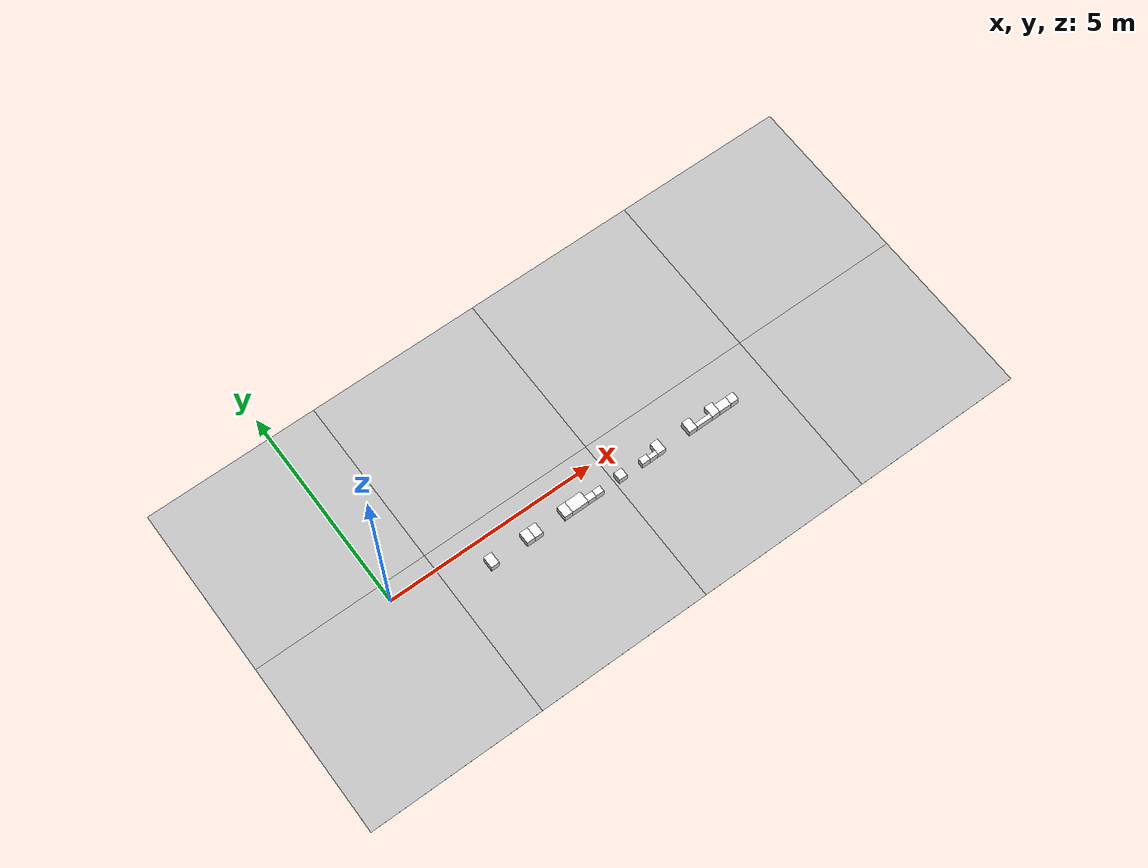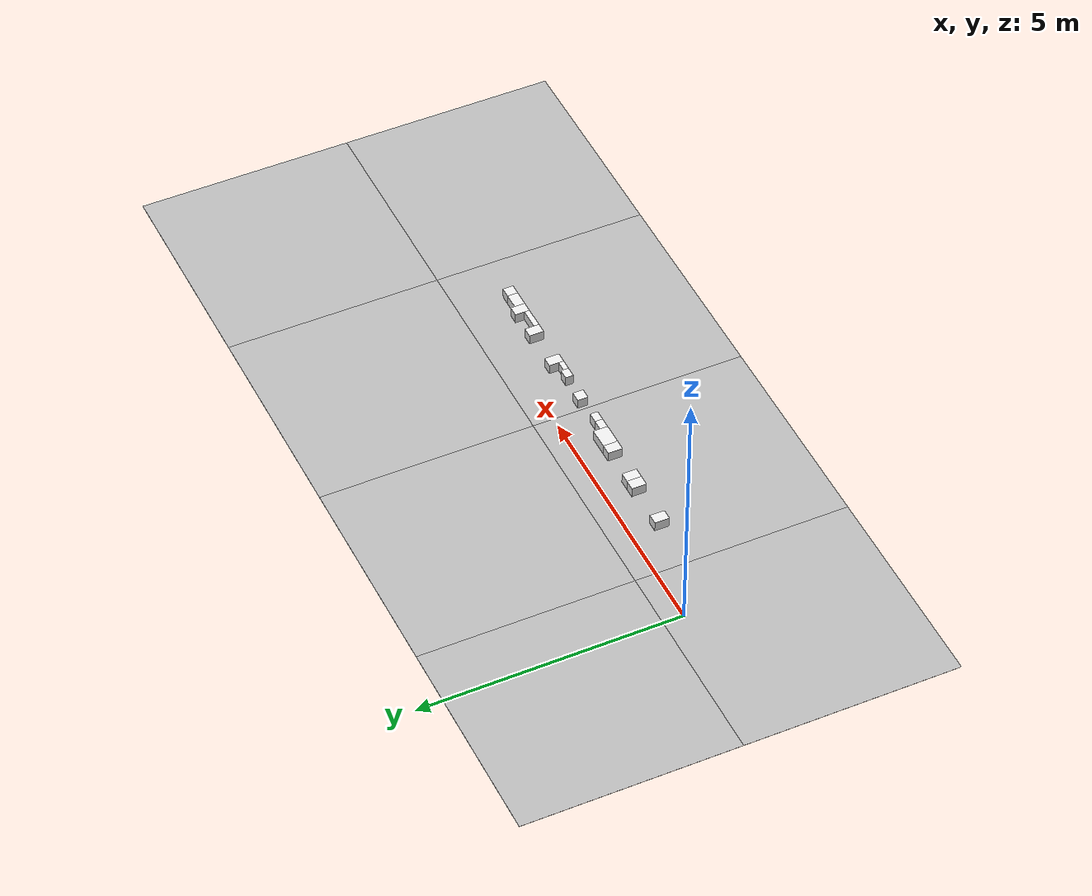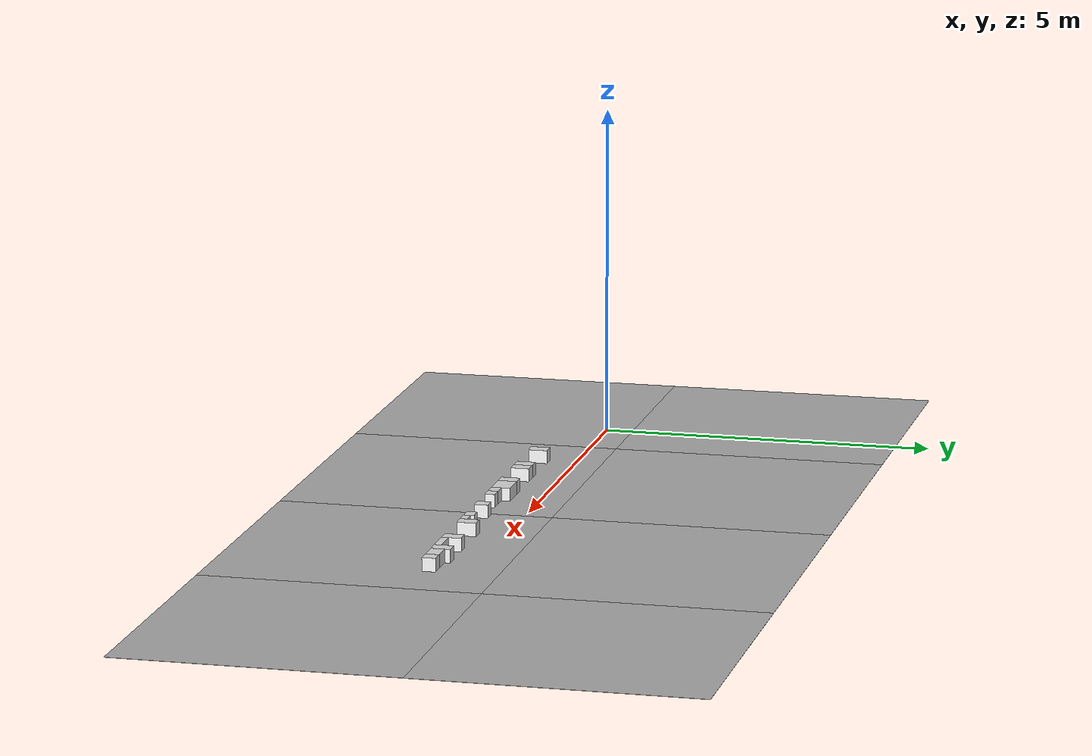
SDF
<sdf version='1.6'><world name='default'>
    <light name='sun_light' type='directional'>
      <pose frame=''>0 0 10 0 -0 0</pose>
      <diffuse>0.5 0.5 0.5 1</diffuse>
      <specular>0.1 0.1 0.1 1</specular>
      <direction>0.1 0.1 -0.9</direction>
      <attenuation>
        <range>20</range>
        <constant>0.5</constant>
        <linear>0.01</linear>
        <quadratic>0.001</quadratic>
      </attenuation>
      <cast_shadows>1</cast_shadows>
    </light>

    <model name='Tile/0-0'>
      <static>1</static>
      <link name='link'>
        <collision name='collision'>
          <geometry>
            <plane>
              <normal>0 0 1</normal>
              <size>4.096 4.096</size>
            </plane>
          </geometry>
          <surface>
            <friction>
              <ode>
                <mu>100</mu>
                <mu2>50</mu2>
              </ode>
              <torsional>
                <ode/>
              </torsional>
            </friction>
            <contact>
              <ode/>
            </contact>
            <bounce/>
          </surface>
          <max_contacts>10</max_contacts>
        </collision>
        <visual name='visual'>
          <cast_shadows>0</cast_shadows>
          <geometry>
            <plane>
              <normal>0 0 1</normal>
              <size>4.096 4.096</size>
            </plane>
          </geometry>
          <material>
            <script>
              <uri>file://materials/scripts</uri>
              <uri>file://materials/textures</uri>
              <name>Tile/aa44efc093d15b0d016b671cb8dad8b9b5925cd42bc6b331ef31decf4ba6863e</name>
            </script>
          </material>
        </visual>
        <self_collide>0</self_collide>
        <enable_wind>0</enable_wind>
        <kinematic>0</kinematic>
      </link>
      <pose frame=''>-0.952 -1.6520000000000001 0 0 -0 0</pose>
    </model>

    <model name='Tile/0-1'>
      <static>1</static>
      <link name='link'>
        <collision name='collision'>
          <geometry>
            <plane>
              <normal>0 0 1</normal>
              <size>4.096 4.096</size>
            </plane>
          </geometry>
          <surface>
            <friction>
              <ode>
                <mu>100</mu>
                <mu2>50</mu2>
              </ode>
              <torsional>
                <ode/>
              </torsional>
            </friction>
            <contact>
              <ode/>
            </contact>
            <bounce/>
          </surface>
          <max_contacts>10</max_contacts>
        </collision>
        <visual name='visual'>
          <cast_shadows>0</cast_shadows>
          <geometry>
            <plane>
              <normal>0 0 1</normal>
              <size>4.096 4.096</size>
            </plane>
          </geometry>
          <material>
            <script>
              <uri>file://materials/scripts</uri>
              <uri>file://materials/textures</uri>
              <name>Tile/6681b896b1587d54cb69aadeb5fb7247b4d6d500490292053e67105ac88ca889</name>
            </script>
          </material>
        </visual>
        <self_collide>0</self_collide>
        <enable_wind>0</enable_wind>
        <kinematic>0</kinematic>
      </link>
      <pose frame=''>-0.952 2.444 0 0 -0 0</pose>
    </model>

    <model name='Tile/1-0'>
      <static>1</static>
      <link name='link'>
        <collision name='collision'>
          <geometry>
            <plane>
              <normal>0 0 1</normal>
              <size>4.096 4.096</size>
            </plane>
          </geometry>
          <surface>
            <friction>
              <ode>
                <mu>100</mu>
                <mu2>50</mu2>
              </ode>
              <torsional>
                <ode/>
              </torsional>
            </friction>
            <contact>
              <ode/>
            </contact>
            <bounce/>
          </surface>
          <max_contacts>10</max_contacts>
        </collision>
        <visual name='visual'>
          <cast_shadows>0</cast_shadows>
          <geometry>
            <plane>
              <normal>0 0 1</normal>
              <size>4.096 4.096</size>
            </plane>
          </geometry>
          <material>
            <script>
              <uri>file://materials/scripts</uri>
              <uri>file://materials/textures</uri>
              <name>Tile/7dc8ce11ba64be4533bd38afba15d7a45492441a6a299d20d6da9020bf327f9a</name>
            </script>
          </material>
        </visual>
        <self_collide>0</self_collide>
        <enable_wind>0</enable_wind>
        <kinematic>0</kinematic>
      </link>
      <pose frame=''>3.144 -1.6520000000000001 0 0 -0 0</pose>
    </model>

    <model name='Tile/1-1'>
      <static>1</static>
      <link name='link'>
        <collision name='collision'>
          <geometry>
            <plane>
              <normal>0 0 1</normal>
              <size>4.096 4.096</size>
            </plane>
          </geometry>
          <surface>
            <friction>
              <ode>
                <mu>100</mu>
                <mu2>50</mu2>
              </ode>
              <torsional>
                <ode/>
              </torsional>
            </friction>
            <contact>
              <ode/>
            </contact>
            <bounce/>
          </surface>
          <max_contacts>10</max_contacts>
        </collision>
        <visual name='visual'>
          <cast_shadows>0</cast_shadows>
          <geometry>
            <plane>
              <normal>0 0 1</normal>
              <size>4.096 4.096</size>
            </plane>
          </geometry>
          <material>
            <script>
              <uri>file://materials/scripts</uri>
              <uri>file://materials/textures</uri>
              <name>Tile/13957a6de1f2afce18d7f1f64dacc2f21295e26ccf498256b0e1a51002cd5706</name>
            </script>
          </material>
        </visual>
        <self_collide>0</self_collide>
        <enable_wind>0</enable_wind>
        <kinematic>0</kinematic>
      </link>
      <pose frame=''>3.144 2.444 0 0 -0 0</pose>
    </model>

    <model name='Tile/2-0'>
      <static>1</static>
      <link name='link'>
        <collision name='collision'>
          <geometry>
            <plane>
              <normal>0 0 1</normal>
              <size>4.096 4.096</size>
            </plane>
          </geometry>
          <surface>
            <friction>
              <ode>
                <mu>100</mu>
                <mu2>50</mu2>
              </ode>
              <torsional>
                <ode/>
              </torsional>
            </friction>
            <contact>
              <ode/>
            </contact>
            <bounce/>
          </surface>
          <max_contacts>10</max_contacts>
        </collision>
        <visual name='visual'>
          <cast_shadows>0</cast_shadows>
          <geometry>
            <plane>
              <normal>0 0 1</normal>
              <size>4.096 4.096</size>
            </plane>
          </geometry>
          <material>
            <script>
              <uri>file://materials/scripts</uri>
              <uri>file://materials/textures</uri>
              <name>Tile/e1e258e795c282876e6c88ad2bfdf38c4a17c8ecb43e058a6b7c4b864abee96e</name>
            </script>
          </material>
        </visual>
        <self_collide>0</self_collide>
        <enable_wind>0</enable_wind>
        <kinematic>0</kinematic>
      </link>
      <pose frame=''>7.24 -1.6520000000000001 0 0 -0 0</pose>
    </model>

    <model name='Tile/2-1'>
      <static>1</static>
      <link name='link'>
        <collision name='collision'>
          <geometry>
            <plane>
              <normal>0 0 1</normal>
              <size>4.096 4.096</size>
            </plane>
          </geometry>
          <surface>
            <friction>
              <ode>
                <mu>100</mu>
                <mu2>50</mu2>
              </ode>
              <torsional>
                <ode/>
              </torsional>
            </friction>
            <contact>
              <ode/>
            </contact>
            <bounce/>
          </surface>
          <max_contacts>10</max_contacts>
        </collision>
        <visual name='visual'>
          <cast_shadows>0</cast_shadows>
          <geometry>
            <plane>
              <normal>0 0 1</normal>
              <size>4.096 4.096</size>
            </plane>
          </geometry>
          <material>
            <script>
              <uri>file://materials/scripts</uri>
              <uri>file://materials/textures</uri>
              <name>Tile/13957a6de1f2afce18d7f1f64dacc2f21295e26ccf498256b0e1a51002cd5706</name>
            </script>
          </material>
        </visual>
        <self_collide>0</self_collide>
        <enable_wind>0</enable_wind>
        <kinematic>0</kinematic>
      </link>
      <pose frame=''>7.24 2.444 0 0 -0 0</pose>
    </model>

    <model name='Tile/3-0'>
      <static>1</static>
      <link name='link'>
        <collision name='collision'>
          <geometry>
            <plane>
              <normal>0 0 1</normal>
              <size>4.096 4.096</size>
            </plane>
          </geometry>
          <surface>
            <friction>
              <ode>
                <mu>100</mu>
                <mu2>50</mu2>
              </ode>
              <torsional>
                <ode/>
              </torsional>
            </friction>
            <contact>
              <ode/>
            </contact>
            <bounce/>
          </surface>
          <max_contacts>10</max_contacts>
        </collision>
        <visual name='visual'>
          <cast_shadows>0</cast_shadows>
          <geometry>
            <plane>
              <normal>0 0 1</normal>
              <size>4.096 4.096</size>
            </plane>
          </geometry>
          <material>
            <script>
              <uri>file://materials/scripts</uri>
              <uri>file://materials/textures</uri>
              <name>Tile/24cff4cfd29088829f06b91573f2d527903faa6ef89d07519b5e2219bf9e69df</name>
            </script>
          </material>
        </visual>
        <self_collide>0</self_collide>
        <enable_wind>0</enable_wind>
        <kinematic>0</kinematic>
      </link>
      <pose frame=''>11.336 -1.6520000000000001 0 0 -0 0</pose>
    </model>

    <model name='Tile/3-1'>
      <static>1</static>
      <link name='link'>
        <collision name='collision'>
          <geometry>
            <plane>
              <normal>0 0 1</normal>
              <size>4.096 4.096</size>
            </plane>
          </geometry>
          <surface>
            <friction>
              <ode>
                <mu>100</mu>
                <mu2>50</mu2>
              </ode>
              <torsional>
                <ode/>
              </torsional>
            </friction>
            <contact>
              <ode/>
            </contact>
            <bounce/>
          </surface>
          <max_contacts>10</max_contacts>
        </collision>
        <visual name='visual'>
          <cast_shadows>0</cast_shadows>
          <geometry>
            <plane>
              <normal>0 0 1</normal>
              <size>4.096 4.096</size>
            </plane>
          </geometry>
          <material>
            <script>
              <uri>file://materials/scripts</uri>
              <uri>file://materials/textures</uri>
              <name>Tile/f5a4d266d57c88a2e237d7d103c13ff89585a31ae4c0025a395214e999f068f7</name>
            </script>
          </material>
        </visual>
        <self_collide>0</self_collide>
        <enable_wind>0</enable_wind>
        <kinematic>0</kinematic>
      </link>
      <pose frame=''>11.336 2.444 0 0 -0 0</pose>
    </model>

    <model name='Obstacle/-5/0'>
      <pose frame=''>2.1 -0.5599999999999999 0.1 0 0 -0.0</pose>
      <link name='link'>
        <inertial>
          <mass>10</mass>
          <inertia>
            <ixx>0.166667</ixx>
            <ixy>0</ixy>
            <ixz>0</ixz>
            <iyy>0.166667</iyy>
            <iyz>0</iyz>
            <izz>0.166667</izz>
          </inertia>
        </inertial>
        <collision name='collision'>
          <geometry>
            <box>
              <size>0.2 0.28 0.2</size>
            </box>
          </geometry>
          <max_contacts>10</max_contacts>
          <surface>
            <contact>
              <ode/>
            </contact>
            <bounce/>
            <friction>
              <torsional>
                <ode/>
              </torsional>
              <ode/>
            </friction>
          </surface>
        </collision>
        <visual name='visual'>
          <geometry>
            <box>
              <size>0.2 0.28 0.2</size>
            </box>
          </geometry>
          <material>
            <script>
              <name>Gazebo/White</name>
              <uri>file://media/materials/scripts/gazebo.material</uri>
            </script>
          </material>
        </visual>
        <self_collide>0</self_collide>
        <enable_wind>0</enable_wind>
        <kinematic>0</kinematic>
      </link>
    </model>

    <model name='Obstacle/-12/0'>
      <pose frame=''>3.0000000000000004 -0.5599999999999999 0.1 0 0 -0.0</pose>
      <link name='link'>
        <inertial>
          <mass>10</mass>
          <inertia>
            <ixx>0.166667</ixx>
            <ixy>0</ixy>
            <ixz>0</ixz>
            <iyy>0.166667</iyy>
            <iyz>0</iyz>
            <izz>0.166667</izz>
          </inertia>
        </inertial>
        <collision name='collision'>
          <geometry>
            <box>
              <size>0.2 0.28 0.2</size>
            </box>
          </geometry>
          <max_contacts>10</max_contacts>
          <surface>
            <contact>
              <ode/>
            </contact>
            <bounce/>
            <friction>
              <torsional>
                <ode/>
              </torsional>
              <ode/>
            </friction>
          </surface>
        </collision>
        <visual name='visual'>
          <geometry>
            <box>
              <size>0.2 0.28 0.2</size>
            </box>
          </geometry>
          <material>
            <script>
              <name>Gazebo/White</name>
              <uri>file://media/materials/scripts/gazebo.material</uri>
            </script>
          </material>
        </visual>
        <self_collide>0</self_collide>
        <enable_wind>0</enable_wind>
        <kinematic>0</kinematic>
      </link>
    </model>

    <model name='Obstacle/-16/0'>
      <pose frame=''>3.2000000000000006 -0.5599999999999999 0.1 0 0 -0.0</pose>
      <link name='link'>
        <inertial>
          <mass>10</mass>
          <inertia>
            <ixx>0.166667</ixx>
            <ixy>0</ixy>
            <ixz>0</ixz>
            <iyy>0.166667</iyy>
            <iyz>0</iyz>
            <izz>0.166667</izz>
          </inertia>
        </inertial>
        <collision name='collision'>
          <geometry>
            <box>
              <size>0.2 0.28 0.2</size>
            </box>
          </geometry>
          <max_contacts>10</max_contacts>
          <surface>
            <contact>
              <ode/>
            </contact>
            <bounce/>
            <friction>
              <torsional>
                <ode/>
              </torsional>
              <ode/>
            </friction>
          </surface>
        </collision>
        <visual name='visual'>
          <geometry>
            <box>
              <size>0.2 0.28 0.2</size>
            </box>
          </geometry>
          <material>
            <script>
              <name>Gazebo/White</name>
              <uri>file://media/materials/scripts/gazebo.material</uri>
            </script>
          </material>
        </visual>
        <self_collide>0</self_collide>
        <enable_wind>0</enable_wind>
        <kinematic>0</kinematic>
      </link>
    </model>

    <model name='Obstacle/-23/0'>
      <pose frame=''>3.9500000000000006 -0.5599999999999999 0.1 0 0 -0.0</pose>
      <link name='link'>
        <inertial>
          <mass>10</mass>
          <inertia>
            <ixx>0.166667</ixx>
            <ixy>0</ixy>
            <ixz>0</ixz>
            <iyy>0.166667</iyy>
            <iyz>0</iyz>
            <izz>0.166667</izz>
          </inertia>
        </inertial>
        <collision name='collision'>
          <geometry>
            <box>
              <size>0.2 0.28 0.2</size>
            </box>
          </geometry>
          <max_contacts>10</max_contacts>
          <surface>
            <contact>
              <ode/>
            </contact>
            <bounce/>
            <friction>
              <torsional>
                <ode/>
              </torsional>
              <ode/>
            </friction>
          </surface>
        </collision>
        <visual name='visual'>
          <geometry>
            <box>
              <size>0.2 0.28 0.2</size>
            </box>
          </geometry>
          <material>
            <script>
              <name>Gazebo/White</name>
              <uri>file://media/materials/scripts/gazebo.material</uri>
            </script>
          </material>
        </visual>
        <self_collide>0</self_collide>
        <enable_wind>0</enable_wind>
        <kinematic>0</kinematic>
      </link>
    </model>

    <model name='Obstacle/-27/0'>
      <pose frame=''>4.250000000000001 -0.5599999999999999 0.1 0 0 -0.0</pose>
      <link name='link'>
        <inertial>
          <mass>10</mass>
          <inertia>
            <ixx>0.166667</ixx>
            <ixy>0</ixy>
            <ixz>0</ixz>
            <iyy>0.166667</iyy>
            <iyz>0</iyz>
            <izz>0.166667</izz>
          </inertia>
        </inertial>
        <collision name='collision'>
          <geometry>
            <box>
              <size>0.4 0.28 0.2</size>
            </box>
          </geometry>
          <max_contacts>10</max_contacts>
          <surface>
            <contact>
              <ode/>
            </contact>
            <bounce/>
            <friction>
              <torsional>
                <ode/>
              </torsional>
              <ode/>
            </friction>
          </surface>
        </collision>
        <visual name='visual'>
          <geometry>
            <box>
              <size>0.4 0.28 0.2</size>
            </box>
          </geometry>
          <material>
            <script>
              <name>Gazebo/White</name>
              <uri>file://media/materials/scripts/gazebo.material</uri>
            </script>
          </material>
        </visual>
        <self_collide>0</self_collide>
        <enable_wind>0</enable_wind>
        <kinematic>0</kinematic>
      </link>
    </model>

    <model name='Obstacle/-31/0'>
      <pose frame=''>4.550000000000001 -0.625 0.1 0 0 -0.0</pose>
      <link name='link'>
        <inertial>
          <mass>10</mass>
          <inertia>
            <ixx>0.166667</ixx>
            <ixy>0</ixy>
            <ixz>0</ixz>
            <iyy>0.166667</iyy>
            <iyz>0</iyz>
            <izz>0.166667</izz>
          </inertia>
        </inertial>
        <collision name='collision'>
          <geometry>
            <box>
              <size>0.2 0.15 0.2</size>
            </box>
          </geometry>
          <max_contacts>10</max_contacts>
          <surface>
            <contact>
              <ode/>
            </contact>
            <bounce/>
            <friction>
              <torsional>
                <ode/>
              </torsional>
              <ode/>
            </friction>
          </surface>
        </collision>
        <visual name='visual'>
          <geometry>
            <box>
              <size>0.2 0.15 0.2</size>
            </box>
          </geometry>
          <material>
            <script>
              <name>Gazebo/White</name>
              <uri>file://media/materials/scripts/gazebo.material</uri>
            </script>
          </material>
        </visual>
        <self_collide>0</self_collide>
        <enable_wind>0</enable_wind>
        <kinematic>0</kinematic>
      </link>
    </model>

    <model name='Obstacle/-35/0'>
      <pose frame=''>4.750000000000001 -0.625 0.1 0 0 -0.0</pose>
      <link name='link'>
        <inertial>
          <mass>10</mass>
          <inertia>
            <ixx>0.166667</ixx>
            <ixy>0</ixy>
            <ixz>0</ixz>
            <iyy>0.166667</iyy>
            <iyz>0</iyz>
            <izz>0.166667</izz>
          </inertia>
        </inertial>
        <collision name='collision'>
          <geometry>
            <box>
              <size>0.2 0.15 0.2</size>
            </box>
          </geometry>
          <max_contacts>10</max_contacts>
          <surface>
            <contact>
              <ode/>
            </contact>
            <bounce/>
            <friction>
              <torsional>
                <ode/>
              </torsional>
              <ode/>
            </friction>
          </surface>
        </collision>
        <visual name='visual'>
          <geometry>
            <box>
              <size>0.2 0.15 0.2</size>
            </box>
          </geometry>
          <material>
            <script>
              <name>Gazebo/White</name>
              <uri>file://media/materials/scripts/gazebo.material</uri>
            </script>
          </material>
        </visual>
        <self_collide>0</self_collide>
        <enable_wind>0</enable_wind>
        <kinematic>0</kinematic>
      </link>
    </model>

    <model name='Obstacle/-42/0'>
      <pose frame=''>5.350000000000001 -0.6 0.1 0 0 -0.0</pose>
      <link name='link'>
        <inertial>
          <mass>10</mass>
          <inertia>
            <ixx>0.166667</ixx>
            <ixy>0</ixy>
            <ixz>0</ixz>
            <iyy>0.166667</iyy>
            <iyz>0</iyz>
            <izz>0.166667</izz>
          </inertia>
        </inertial>
        <collision name='collision'>
          <geometry>
            <box>
              <size>0.2 0.2 0.2</size>
            </box>
          </geometry>
          <max_contacts>10</max_contacts>
          <surface>
            <contact>
              <ode/>
            </contact>
            <bounce/>
            <friction>
              <torsional>
                <ode/>
              </torsional>
              <ode/>
            </friction>
          </surface>
        </collision>
        <visual name='visual'>
          <geometry>
            <box>
              <size>0.2 0.2 0.2</size>
            </box>
          </geometry>
          <material>
            <script>
              <name>Gazebo/White</name>
              <uri>file://media/materials/scripts/gazebo.material</uri>
            </script>
          </material>
        </visual>
        <self_collide>0</self_collide>
        <enable_wind>0</enable_wind>
        <kinematic>0</kinematic>
      </link>
    </model>

    <model name='Obstacle/-49/0'>
      <pose frame=''>5.950000000000002 -0.625 0.1 0 0 -0.0</pose>
      <link name='link'>
        <inertial>
          <mass>10</mass>
          <inertia>
            <ixx>0.166667</ixx>
            <ixy>0</ixy>
            <ixz>0</ixz>
            <iyy>0.166667</iyy>
            <iyz>0</iyz>
            <izz>0.166667</izz>
          </inertia>
        </inertial>
        <collision name='collision'>
          <geometry>
            <box>
              <size>0.2 0.15 0.2</size>
            </box>
          </geometry>
          <max_contacts>10</max_contacts>
          <surface>
            <contact>
              <ode/>
            </contact>
            <bounce/>
            <friction>
              <torsional>
                <ode/>
              </torsional>
              <ode/>
            </friction>
          </surface>
        </collision>
        <visual name='visual'>
          <geometry>
            <box>
              <size>0.2 0.15 0.2</size>
            </box>
          </geometry>
          <material>
            <script>
              <name>Gazebo/White</name>
              <uri>file://media/materials/scripts/gazebo.material</uri>
            </script>
          </material>
        </visual>
        <self_collide>0</self_collide>
        <enable_wind>0</enable_wind>
        <kinematic>0</kinematic>
      </link>
    </model>

    <model name='Obstacle/-53/0'>
      <pose frame=''>6.150000000000002 -0.6499999999999999 0.1 0 0 -0.0</pose>
      <link name='link'>
        <inertial>
          <mass>10</mass>
          <inertia>
            <ixx>0.166667</ixx>
            <ixy>0</ixy>
            <ixz>0</ixz>
            <iyy>0.166667</iyy>
            <iyz>0</iyz>
            <izz>0.166667</izz>
          </inertia>
        </inertial>
        <collision name='collision'>
          <geometry>
            <box>
              <size>0.2 0.1 0.2</size>
            </box>
          </geometry>
          <max_contacts>10</max_contacts>
          <surface>
            <contact>
              <ode/>
            </contact>
            <bounce/>
            <friction>
              <torsional>
                <ode/>
              </torsional>
              <ode/>
            </friction>
          </surface>
        </collision>
        <visual name='visual'>
          <geometry>
            <box>
              <size>0.2 0.1 0.2</size>
            </box>
          </geometry>
          <material>
            <script>
              <name>Gazebo/White</name>
              <uri>file://media/materials/scripts/gazebo.material</uri>
            </script>
          </material>
        </visual>
        <self_collide>0</self_collide>
        <enable_wind>0</enable_wind>
        <kinematic>0</kinematic>
      </link>
    </model>

    <model name='Obstacle/-57/0'>
      <pose frame=''>6.350000000000002 -0.5599999999999999 0.1 0 0 -0.0</pose>
      <link name='link'>
        <inertial>
          <mass>10</mass>
          <inertia>
            <ixx>0.166667</ixx>
            <ixy>0</ixy>
            <ixz>0</ixz>
            <iyy>0.166667</iyy>
            <iyz>0</iyz>
            <izz>0.166667</izz>
          </inertia>
        </inertial>
        <collision name='collision'>
          <geometry>
            <box>
              <size>0.2 0.28 0.2</size>
            </box>
          </geometry>
          <max_contacts>10</max_contacts>
          <surface>
            <contact>
              <ode/>
            </contact>
            <bounce/>
            <friction>
              <torsional>
                <ode/>
              </torsional>
              <ode/>
            </friction>
          </surface>
        </collision>
        <visual name='visual'>
          <geometry>
            <box>
              <size>0.2 0.28 0.2</size>
            </box>
          </geometry>
          <material>
            <script>
              <name>Gazebo/White</name>
              <uri>file://media/materials/scripts/gazebo.material</uri>
            </script>
          </material>
        </visual>
        <self_collide>0</self_collide>
        <enable_wind>0</enable_wind>
        <kinematic>0</kinematic>
      </link>
    </model>

    <model name='Obstacle/-64/0'>
      <pose frame=''>7.180000000000002 -0.5599999999999999 0.1 0 0 -0.0</pose>
      <link name='link'>
        <inertial>
          <mass>10</mass>
          <inertia>
            <ixx>0.166667</ixx>
            <ixy>0</ixy>
            <ixz>0</ixz>
            <iyy>0.166667</iyy>
            <iyz>0</iyz>
            <izz>0.166667</izz>
          </inertia>
        </inertial>
        <collision name='collision'>
          <geometry>
            <box>
              <size>0.2 0.28 0.2</size>
            </box>
          </geometry>
          <max_contacts>10</max_contacts>
          <surface>
            <contact>
              <ode/>
            </contact>
            <bounce/>
            <friction>
              <torsional>
                <ode/>
              </torsional>
              <ode/>
            </friction>
          </surface>
        </collision>
        <visual name='visual'>
          <geometry>
            <box>
              <size>0.2 0.28 0.2</size>
            </box>
          </geometry>
          <material>
            <script>
              <name>Gazebo/White</name>
              <uri>file://media/materials/scripts/gazebo.material</uri>
            </script>
          </material>
        </visual>
        <self_collide>0</self_collide>
        <enable_wind>0</enable_wind>
        <kinematic>0</kinematic>
      </link>
    </model>

    <model name='Obstacle/-68/0'>
      <pose frame=''>7.480000000000003 -0.6499999999999999 0.1 0 0 -0.0</pose>
      <link name='link'>
        <inertial>
          <mass>10</mass>
          <inertia>
            <ixx>0.166667</ixx>
            <ixy>0</ixy>
            <ixz>0</ixz>
            <iyy>0.166667</iyy>
            <iyz>0</iyz>
            <izz>0.166667</izz>
          </inertia>
        </inertial>
        <collision name='collision'>
          <geometry>
            <box>
              <size>0.4 0.1 0.2</size>
            </box>
          </geometry>
          <max_contacts>10</max_contacts>
          <surface>
            <contact>
              <ode/>
            </contact>
            <bounce/>
            <friction>
              <torsional>
                <ode/>
              </torsional>
              <ode/>
            </friction>
          </surface>
        </collision>
        <visual name='visual'>
          <geometry>
            <box>
              <size>0.4 0.1 0.2</size>
            </box>
          </geometry>
          <material>
            <script>
              <name>Gazebo/White</name>
              <uri>file://media/materials/scripts/gazebo.material</uri>
            </script>
          </material>
        </visual>
        <self_collide>0</self_collide>
        <enable_wind>0</enable_wind>
        <kinematic>0</kinematic>
      </link>
    </model>

    <model name='Obstacle/-72/0'>
      <pose frame=''>7.780000000000003 -0.5599999999999999 0.1 0 0 -0.0</pose>
      <link name='link'>
        <inertial>
          <mass>10</mass>
          <inertia>
            <ixx>0.166667</ixx>
            <ixy>0</ixy>
            <ixz>0</ixz>
            <iyy>0.166667</iyy>
            <iyz>0</iyz>
            <izz>0.166667</izz>
          </inertia>
        </inertial>
        <collision name='collision'>
          <geometry>
            <box>
              <size>0.2 0.28 0.2</size>
            </box>
          </geometry>
          <max_contacts>10</max_contacts>
          <surface>
            <contact>
              <ode/>
            </contact>
            <bounce/>
            <friction>
              <torsional>
                <ode/>
              </torsional>
              <ode/>
            </friction>
          </surface>
        </collision>
        <visual name='visual'>
          <geometry>
            <box>
              <size>0.2 0.28 0.2</size>
            </box>
          </geometry>
          <material>
            <script>
              <name>Gazebo/White</name>
              <uri>file://media/materials/scripts/gazebo.material</uri>
            </script>
          </material>
        </visual>
        <self_collide>0</self_collide>
        <enable_wind>0</enable_wind>
        <kinematic>0</kinematic>
      </link>
    </model>

    <model name='Obstacle/-76/0'>
      <pose frame=''>8.030000000000003 -0.6 0.1 0 0 -0.0</pose>
      <link name='link'>
        <inertial>
          <mass>10</mass>
          <inertia>
            <ixx>0.166667</ixx>
            <ixy>0</ixy>
            <ixz>0</ixz>
            <iyy>0.166667</iyy>
            <iyz>0</iyz>
            <izz>0.166667</izz>
          </inertia>
        </inertial>
        <collision name='collision'>
          <geometry>
            <box>
              <size>0.3 0.2 0.2</size>
            </box>
          </geometry>
          <max_contacts>10</max_contacts>
          <surface>
            <contact>
              <ode/>
            </contact>
            <bounce/>
            <friction>
              <torsional>
                <ode/>
              </torsional>
              <ode/>
            </friction>
          </surface>
        </collision>
        <visual name='visual'>
          <geometry>
            <box>
              <size>0.3 0.2 0.2</size>
            </box>
          </geometry>
          <material>
            <script>
              <name>Gazebo/White</name>
              <uri>file://media/materials/scripts/gazebo.material</uri>
            </script>
          </material>
        </visual>
        <self_collide>0</self_collide>
        <enable_wind>0</enable_wind>
        <kinematic>0</kinematic>
      </link>
    </model>

    <model name='Obstacle/-80/0'>
      <pose frame=''>8.280000000000003 -0.6 0.1 0 0 -0.0</pose>
      <link name='link'>
        <inertial>
          <mass>10</mass>
          <inertia>
            <ixx>0.166667</ixx>
            <ixy>0</ixy>
            <ixz>0</ixz>
            <iyy>0.166667</iyy>
            <iyz>0</iyz>
            <izz>0.166667</izz>
          </inertia>
        </inertial>
        <collision name='collision'>
          <geometry>
            <box>
              <size>0.2 0.2 0.2</size>
            </box>
          </geometry>
          <max_contacts>10</max_contacts>
          <surface>
            <contact>
              <ode/>
            </contact>
            <bounce/>
            <friction>
              <torsional>
                <ode/>
              </torsional>
              <ode/>
            </friction>
          </surface>
        </collision>
        <visual name='visual'>
          <geometry>
            <box>
              <size>0.2 0.2 0.2</size>
            </box>
          </geometry>
          <material>
            <script>
              <name>Gazebo/White</name>
              <uri>file://media/materials/scripts/gazebo.material</uri>
            </script>
          </material>
        </visual>
        <self_collide>0</self_collide>
        <enable_wind>0</enable_wind>
        <kinematic>0</kinematic>
      </link>
    </model>
    </world></sdf>
